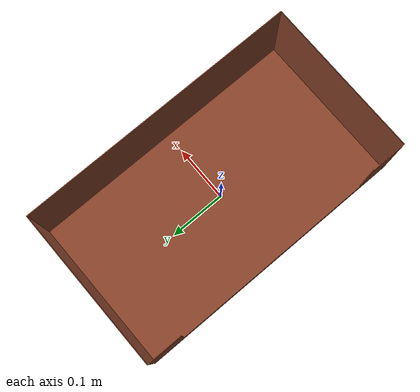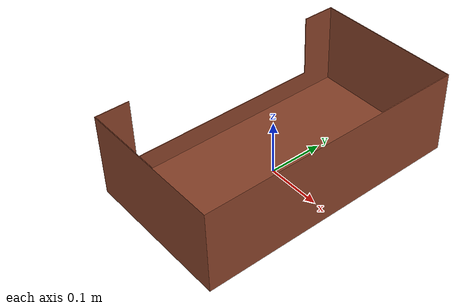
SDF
<?xml version='1.0'?>
<sdf version='1.6'>
  <model name='grocery_box'>
    <link name='link_1'>
    <static>false</static>
      <inertial>
        <mass>0.001</mass>
        <inertia>
          <ixx>0.166667</ixx>
          <ixy>0.01</ixy>
          <ixz>0.01</ixz>
          <iyy>0.166667</iyy>
          <iyz>0.01</iyz>
          <izz>0.166667</izz>
        </inertia>
      </inertial>
      <pose frame=''>0.1457 -0.2514 0 0 -0 1.57</pose>
      <visual name='visual'>
        <pose frame=''>0 0 0 0 -0 0</pose>
        <geometry>
          <mesh>
            <uri>/home/user/catkin_ws/src/mobile_manipulation/srp-md/srp_md/model/grocery_models/grocery_box/meshes/Grocery Box.dae</uri>
            <scale>0.8 0.9 0.5</scale>
          </mesh>
        </geometry>
        <transparency>0</transparency>
        <cast_shadows>1</cast_shadows>
      </visual>
      <collision name="collision_1">
        <pose>0.01224 0.1457 0.015 0 0 1.57</pose>
        <geometry>
          <box>
            <size>0.27432 0.003 0.03</size>
          </box>
        </geometry>
	<surface>
          <friction>
            <ode>
              <mu>0.1</mu>
              <mu2>0.1</mu2>
            </ode>
          </friction>
        </surface>
      </collision>
      <collision name="collision_2">
        <pose>0.5029 0.1457 0.015 0 0 1.57</pose>
        <geometry>
          <box>
            <size>0.27432 0.003 0.03</size>
          </box>
        </geometry>
	<surface>
          <friction>
            <ode>
              <mu>0.1</mu>
              <mu2>0.1</mu2>
            </ode>
          </friction>
        </surface>
      </collision>
    </link>
    <static>0</static>
    <allow_auto_disable>1</allow_auto_disable>
  </model>
</sdf>
